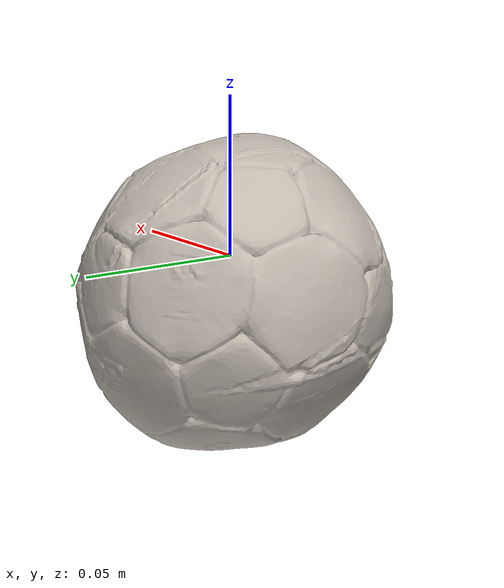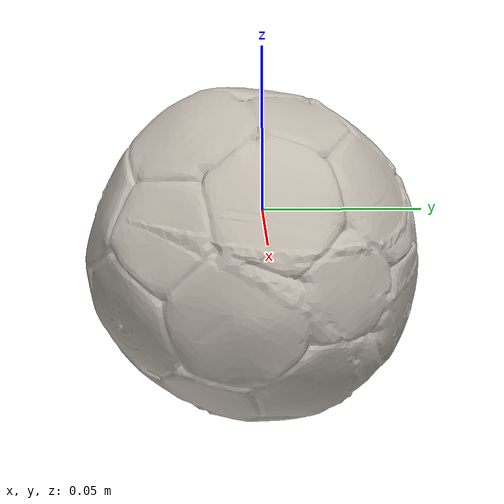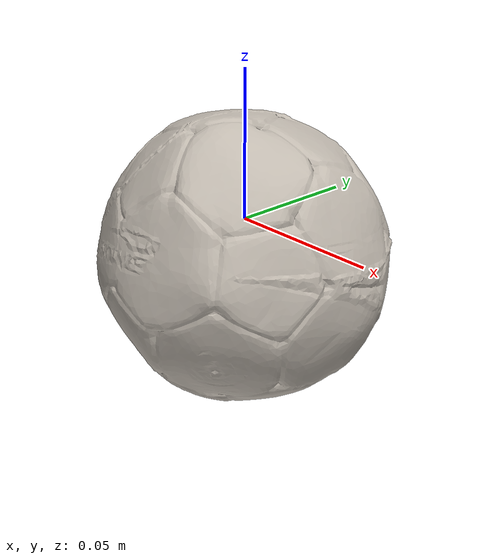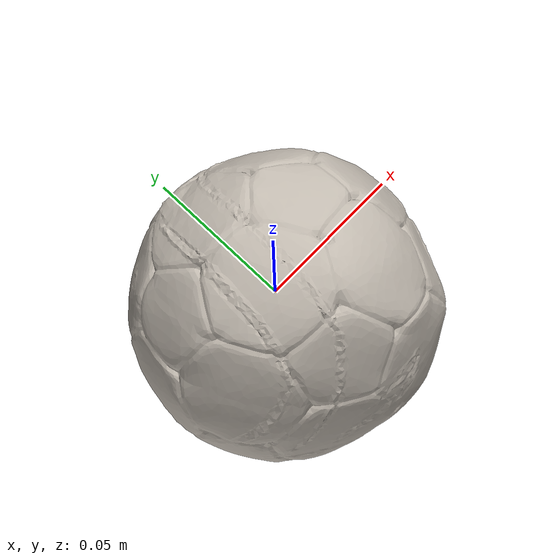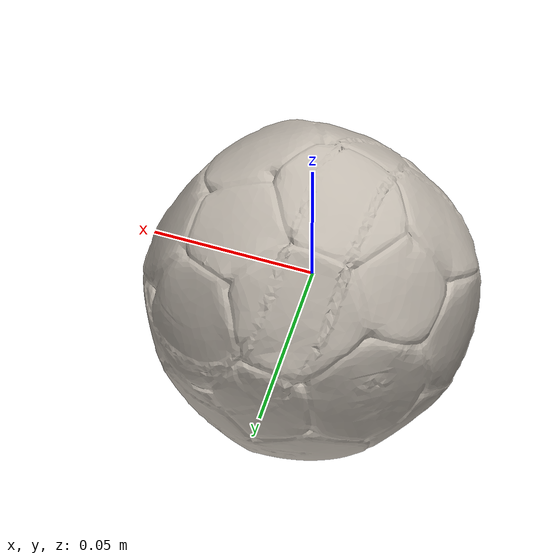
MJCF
<mujoco model="bread">
  <asset>
    <mesh file="nontextured.stl" name="obj_mesh" scale="0.8 0.8 0.8"/>
    <texture file="../../../../../textures/bread.png" type="2d" name="tex-bread" />
    <material name="bread" reflectance="0.7" texrepeat="15 15" texture="tex-bread" texuniform="true"/>
  </asset>
  <worldbody>
    <body>
      <body name="collision">
        <geom pos="0.0061715 -0.011029500000000001 -0.062270500000000006" mesh="obj_mesh" type="mesh" solimp="0.998 0.998 0.001" solref="0.001 1" density="50" friction="0.95 0.3 0.1"  material="bread" group="1" condim="4"/>
      </body>
      <body name="visual">
        <geom pos="0.0061715 -0.011029500000000001 -0.062270500000000006" mesh="obj_mesh" type="mesh" material="bread"  conaffinity="0" contype="0"  group="0" mass="0.0001"/>
        <geom pos="0.0061715 -0.011029500000000001 -0.062270500000000006" mesh="obj_mesh" type="mesh" material="bread"  conaffinity="0" contype="0"  group="1" mass="0.0001"/>
      </body>
      <site rgba="0 0 0 0" size="0.005" pos="0 0 -0.0627935" name="bottom_site"/>
      <site rgba="0 0 0 0" size="0.005" pos="0 0 0.0627935" name="top_site"/>
      <site rgba="0 0 0 0" size="0.005" pos="0.0640285 0.0639185 0.0627935" name="horizontal_radius_site"/>
    </body>
  </worldbody>
</mujoco>
